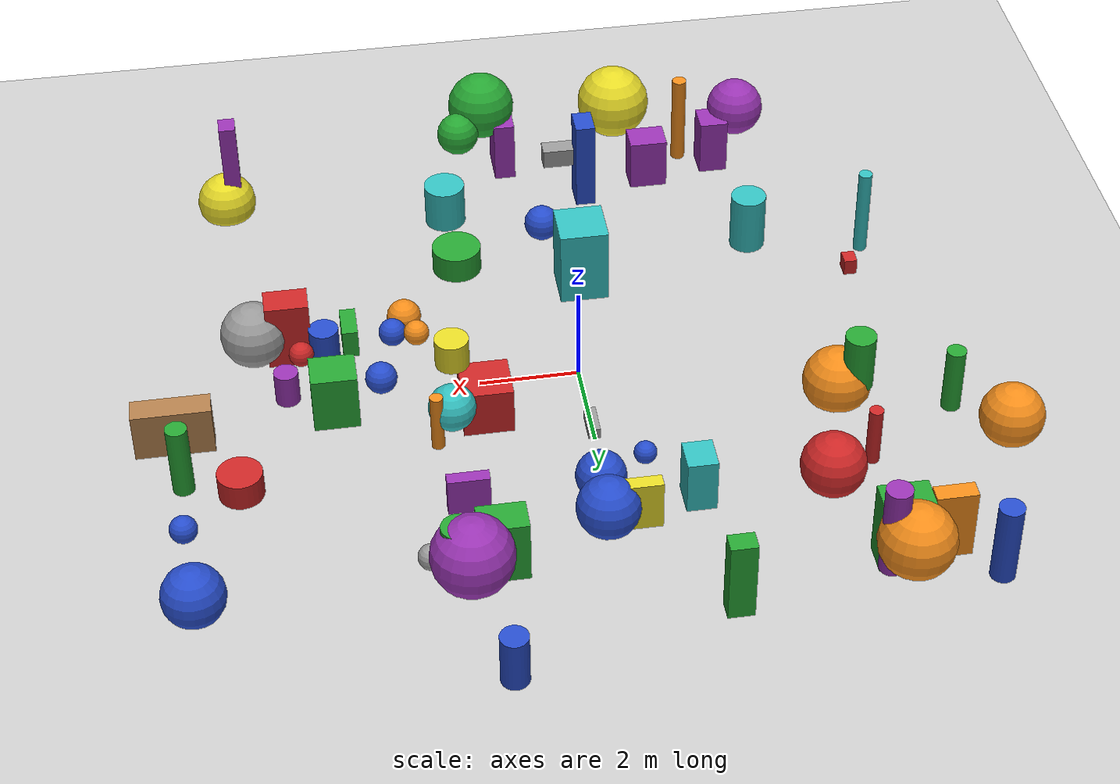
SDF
<sdf version="1.6">
 <world name="ramps_world">
  <include><uri>model://sun</uri></include>
  <include><uri>model://ground_plane</uri></include>
  <model name="box_obstacle_1">
   <pose>2 1 0.5 0 0 0</pose>
   <static>true</static>
   <link name="link">
    <collision name="collision"><geometry><box><size>1 1 1</size></box></geometry></collision>
    <visual name="visual">
     <geometry><box><size>1 1 1</size></box></geometry>
     <material>
      <script><uri>file://media/materials/scripts/gazebo.material</uri><name>Gazebo/Red</name></script>
     </material>
    </visual>
   </link>
  </model>
  <model name="cylinder_obstacle_1">
   <pose>5 -1 0.5 0 0 0</pose>
   <static>true</static>
   <link name="link">
    <collision name="collision">
     <geometry><cylinder><radius>0.3</radius><length>1</length></cylinder></geometry>
    </collision>
    <visual name="visual">
     <geometry><cylinder><radius>0.3</radius><length>1</length></cylinder></geometry>
     <material>
      <script><uri>file://media/materials/scripts/gazebo.material</uri><name>Gazebo/Blue</name></script>
     </material>
    </visual>
   </link>
  </model>
  <model name="box_obstacle_2">
   <pose>8 2 1.5 0 0 0</pose>
   <static>true</static>
   <link name="link">
    <collision name="collision"><geometry><box><size>1.5 0.5 1</size></box></geometry></collision>
    <visual name="visual">
     <geometry><box><size>1.5 0.5 1</size></box></geometry>
     <material>
      <script><uri>file://media/materials/scripts/gazebo.material</uri><name>Gazebo/Wood</name></script>
     </material>
    </visual>
   </link>
  </model>
  <model name="random_obstacle_0">
   <pose>3.04 1.87 0.79 0 0 0</pose>
   <static>true</static>
   <link name="link">
    <collision name="collision">
     <geometry><cylinder><radius>0.13</radius><length>1.23</length></cylinder></geometry>
    </collision>
    <visual name="visual">
     <geometry><cylinder><radius>0.13</radius><length>1.23</length></cylinder></geometry>
     <material>
      <script><uri>file://media/materials/scripts/gazebo.material</uri><name>Gazebo/Orange</name></script>
     </material>
    </visual>
   </link>
  </model>
  <model name="random_obstacle_1">
   <pose>2.37 7.93 0.57 0 0 0</pose>
   <static>true</static>
   <link name="link">
    <collision name="collision">
     <geometry><cylinder><radius>0.27</radius><length>1.09</length></cylinder></geometry>
    </collision>
    <visual name="visual">
     <geometry><cylinder><radius>0.27</radius><length>1.09</length></cylinder></geometry>
     <material>
      <script><uri>file://media/materials/scripts/gazebo.material</uri><name>Gazebo/Blue</name></script>
     </material>
    </visual>
   </link>
  </model>
  <model name="random_obstacle_2">
   <pose>7.81 5.93 0.97 0 0 0</pose>
   <static>true</static>
   <link name="link">
    <collision name="collision"><geometry><sphere><radius>0.60</radius></sphere></geometry></collision>
    <visual name="visual">
     <geometry><sphere><radius>0.60</radius></sphere></geometry>
     <material>
      <script><uri>file://media/materials/scripts/gazebo.material</uri><name>Gazebo/Blue</name></script>
     </material>
    </visual>
   </link>
  </model>
  <model name="random_obstacle_3">
   <pose>-1.80 7.10 1.08 0 0 0</pose>
   <static>true</static>
   <link name="link">
    <collision name="collision"><geometry><box><size>0.51 0.39 1.71</size></box></geometry></collision>
    <visual name="visual">
     <geometry><box><size>0.51 0.39 1.71</size></box></geometry>
     <material>
      <script><uri>file://media/materials/scripts/gazebo.material</uri><name>Gazebo/Green</name></script>
     </material>
    </visual>
   </link>
  </model>
  <model name="random_obstacle_4">
   <pose>-1.68 3.95 0.59 0 0 0</pose>
   <static>true</static>
   <link name="link">
    <collision name="collision"><geometry><box><size>0.59 0.68 1.14</size></box></geometry></collision>
    <visual name="visual">
     <geometry><box><size>0.59 0.68 1.14</size></box></geometry>
     <material>
      <script><uri>file://media/materials/scripts/gazebo.material</uri><name>Gazebo/Turquoise</name></script>
     </material>
    </visual>
   </link>
  </model>
  <model name="random_obstacle_5">
   <pose>3.21 -0.04 1.46 0 0 0</pose>
   <static>true</static>
   <link name="link">
    <collision name="collision"><geometry><sphere><radius>0.25</radius></sphere></geometry></collision>
    <visual name="visual">
     <geometry><sphere><radius>0.25</radius></sphere></geometry>
     <material>
      <script><uri>file://media/materials/scripts/gazebo.material</uri><name>Gazebo/Orange</name></script>
     </material>
    </visual>
   </link>
  </model>
  <model name="random_obstacle_6">
   <pose>6.38 -1.36 0.74 0 0 0</pose>
   <static>true</static>
   <link name="link">
    <collision name="collision"><geometry><sphere><radius>0.67</radius></sphere></geometry></collision>
    <visual name="visual">
     <geometry><sphere><radius>0.67</radius></sphere></geometry>
     <material>
      <script><uri>file://media/materials/scripts/gazebo.material</uri><name>Gazebo/Grey</name></script>
     </material>
    </visual>
   </link>
  </model>
  <model name="random_obstacle_7">
   <pose>-5.08 6.04 0.56 0 0 0</pose>
   <static>true</static>
   <link name="link">
    <collision name="collision"><geometry><box><size>0.97 0.66 1.96</size></box></geometry></collision>
    <visual name="visual">
     <geometry><box><size>0.97 0.66 1.96</size></box></geometry>
     <material>
      <script><uri>file://media/materials/scripts/gazebo.material</uri><name>Gazebo/Green</name></script>
     </material>
    </visual>
   </link>
  </model>
  <model name="random_obstacle_8">
   <pose>-0.39 -2.16 1.32 0 0 0</pose>
   <static>true</static>
   <link name="link">
    <collision name="collision"><geometry><box><size>0.99 1.00 1.62</size></box></geometry></collision>
    <visual name="visual">
     <geometry><box><size>0.99 1.00 1.62</size></box></geometry>
     <material>
      <script><uri>file://media/materials/scripts/gazebo.material</uri><name>Gazebo/Turquoise</name></script>
     </material>
    </visual>
   </link>
  </model>
  <model name="random_obstacle_9">
   <pose>-6.46 -2.71 1.27 0 0 0</pose>
   <static>true</static>
   <link name="link">
    <collision name="collision">
     <geometry><cylinder><radius>0.14</radius><length>1.92</length></cylinder></geometry>
    </collision>
    <visual name="visual">
     <geometry><cylinder><radius>0.14</radius><length>1.92</length></cylinder></geometry>
     <material>
      <script><uri>file://media/materials/scripts/gazebo.material</uri><name>Gazebo/Turquoise</name></script>
     </material>
    </visual>
   </link>
  </model>
  <model name="random_obstacle_10">
   <pose>6.86 2.70 0.53 0 0 0</pose>
   <static>true</static>
   <link name="link">
    <collision name="collision">
     <geometry><cylinder><radius>0.44</radius><length>0.54</length></cylinder></geometry>
    </collision>
    <visual name="visual">
     <geometry><cylinder><radius>0.44</radius><length>0.54</length></cylinder></geometry>
     <material>
      <script><uri>file://media/materials/scripts/gazebo.material</uri><name>Gazebo/Red</name></script>
     </material>
    </visual>
   </link>
  </model>
  <model name="random_obstacle_11">
   <pose>3.33 -1.78 0.47 0 0 0</pose>
   <static>true</static>
   <link name="link">
    <collision name="collision"><geometry><sphere><radius>0.35</radius></sphere></geometry></collision>
    <visual name="visual">
     <geometry><sphere><radius>0.35</radius></sphere></geometry>
     <material>
      <script><uri>file://media/materials/scripts/gazebo.material</uri><name>Gazebo/Orange</name></script>
     </material>
    </visual>
   </link>
  </model>
  <model name="random_obstacle_12">
   <pose>-4.27 4.00 0.54 0 0 0</pose>
   <static>true</static>
   <link name="link">
    <collision name="collision"><geometry><sphere><radius>0.65</radius></sphere></geometry></collision>
    <visual name="visual">
     <geometry><sphere><radius>0.65</radius></sphere></geometry>
     <material>
      <script><uri>file://media/materials/scripts/gazebo.material</uri><name>Gazebo/Red</name></script>
     </material>
    </visual>
   </link>
  </model>
  <model name="random_obstacle_13">
   <pose>0.14 -4.14 0.69 0 0 0</pose>
   <static>true</static>
   <link name="link">
    <collision name="collision"><geometry><sphere><radius>0.37</radius></sphere></geometry></collision>
    <visual name="visual">
     <geometry><sphere><radius>0.37</radius></sphere></geometry>
     <material>
      <script><uri>file://media/materials/scripts/gazebo.material</uri><name>Gazebo/Blue</name></script>
     </material>
    </visual>
   </link>
  </model>
  <model name="random_obstacle_14">
   <pose>-3.94 -6.29 0.87 0 0 0</pose>
   <static>true</static>
   <link name="link">
    <collision name="collision"><geometry><box><size>0.60 0.64 1.22</size></box></geometry></collision>
    <visual name="visual">
     <geometry><box><size>0.60 0.64 1.22</size></box></geometry>
     <material>
      <script><uri>file://media/materials/scripts/gazebo.material</uri><name>Gazebo/Purple</name></script>
     </material>
    </visual>
   </link>
  </model>
  <model name="random_obstacle_15">
   <pose>0.08 3.26 0.23 0 0 0</pose>
   <static>true</static>
   <link name="link">
    <collision name="collision"><geometry><sphere><radius>0.50</radius></sphere></geometry></collision>
    <visual name="visual">
     <geometry><sphere><radius>0.50</radius></sphere></geometry>
     <material>
      <script><uri>file://media/materials/scripts/gazebo.material</uri><name>Gazebo/Blue</name></script>
     </material>
    </visual>
   </link>
  </model>
  <model name="random_obstacle_16">
   <pose>2.59 0.61 1.45 0 0 0</pose>
   <static>true</static>
   <link name="link">
    <collision name="collision">
     <geometry><cylinder><radius>0.34</radius><length>0.62</length></cylinder></geometry>
    </collision>
    <visual name="visual">
     <geometry><cylinder><radius>0.34</radius><length>0.62</length></cylinder></geometry>
     <material>
      <script><uri>file://media/materials/scripts/gazebo.material</uri><name>Gazebo/Yellow</name></script>
     </material>
    </visual>
   </link>
  </model>
  <model name="random_obstacle_17">
   <pose>-3.22 -6.40 1.45 0 0 0</pose>
   <static>true</static>
   <link name="link">
    <collision name="collision">
     <geometry><cylinder><radius>0.15</radius><length>1.98</length></cylinder></geometry>
    </collision>
    <visual name="visual">
     <geometry><cylinder><radius>0.15</radius><length>1.98</length></cylinder></geometry>
     <material>
      <script><uri>file://media/materials/scripts/gazebo.material</uri><name>Gazebo/Orange</name></script>
     </material>
    </visual>
   </link>
  </model>
  <model name="random_obstacle_18">
   <pose>-5.05 6.94 1.29 0 0 0</pose>
   <static>true</static>
   <link name="link">
    <collision name="collision"><geometry><sphere><radius>0.74</radius></sphere></geometry></collision>
    <visual name="visual">
     <geometry><sphere><radius>0.74</radius></sphere></geometry>
     <material>
      <script><uri>file://media/materials/scripts/gazebo.material</uri><name>Gazebo/Orange</name></script>
     </material>
    </visual>
   </link>
  </model>
  <model name="random_obstacle_19">
   <pose>0.13 2.46 0.86 0 0 0</pose>
   <static>true</static>
   <link name="link">
    <collision name="collision"><geometry><box><size>0.23 0.65 0.22</size></box></geometry></collision>
    <visual name="visual">
     <geometry><box><size>0.23 0.65 0.22</size></box></geometry>
     <material>
      <script><uri>file://media/materials/scripts/gazebo.material</uri><name>Gazebo/Grey</name></script>
     </material>
    </visual>
   </link>
  </model>
  <model name="random_obstacle_20">
   <pose>5.82 0.55 0.95 0 0 0</pose>
   <static>true</static>
   <link name="link">
    <collision name="collision">
     <geometry><cylinder><radius>0.24</radius><length>0.70</length></cylinder></geometry>
    </collision>
    <visual name="visual">
     <geometry><cylinder><radius>0.24</radius><length>0.70</length></cylinder></geometry>
     <material>
      <script><uri>file://media/materials/scripts/gazebo.material</uri><name>Gazebo/Purple</name></script>
     </material>
    </visual>
   </link>
  </model>
  <model name="random_obstacle_21">
   <pose>-6.01 6.01 0.63 0 0 0</pose>
   <static>true</static>
   <link name="link">
    <collision name="collision"><geometry><box><size>0.80 0.35 1.69</size></box></geometry></collision>
    <visual name="visual">
     <geometry><box><size>0.80 0.35 1.69</size></box></geometry>
     <material>
      <script><uri>file://media/materials/scripts/gazebo.material</uri><name>Gazebo/Orange</name></script>
     </material>
    </visual>
   </link>
  </model>
  <model name="random_obstacle_22">
   <pose>7.92 2.59 1.20 0 0 0</pose>
   <static>true</static>
   <link name="link">
    <collision name="collision">
     <geometry><cylinder><radius>0.21</radius><length>1.52</length></cylinder></geometry>
    </collision>
    <visual name="visual">
     <geometry><cylinder><radius>0.21</radius><length>1.52</length></cylinder></geometry>
     <material>
      <script><uri>file://media/materials/scripts/gazebo.material</uri><name>Gazebo/Green</name></script>
     </material>
    </visual>
   </link>
  </model>
  <model name="random_obstacle_23">
   <pose>-6.07 -2.10 0.41 0 0 0</pose>
   <static>true</static>
   <link name="link">
    <collision name="collision"><geometry><box><size>0.27 0.33 0.34</size></box></geometry></collision>
    <visual name="visual">
     <geometry><box><size>0.27 0.33 0.34</size></box></geometry>
     <material>
      <script><uri>file://media/materials/scripts/gazebo.material</uri><name>Gazebo/Red</name></script>
     </material>
    </visual>
   </link>
  </model>
  <model name="random_obstacle_24">
   <pose>6.72 -6.59 0.24 0 0 0</pose>
   <static>true</static>
   <link name="link">
    <collision name="collision"><geometry><sphere><radius>0.62</radius></sphere></geometry></collision>
    <visual name="visual">
     <geometry><sphere><radius>0.62</radius></sphere></geometry>
     <material>
      <script><uri>file://media/materials/scripts/gazebo.material</uri><name>Gazebo/Yellow</name></script>
     </material>
    </visual>
   </link>
  </model>
  <model name="random_obstacle_25">
   <pose>0.58 -7.26 0.56 0 0 0</pose>
   <static>true</static>
   <link name="link">
    <collision name="collision"><geometry><box><size>0.45 0.88 1.53</size></box></geometry></collision>
    <visual name="visual">
     <geometry><box><size>0.45 0.88 1.53</size></box></geometry>
     <material>
      <script><uri>file://media/materials/scripts/gazebo.material</uri><name>Gazebo/Purple</name></script>
     </material>
    </visual>
   </link>
  </model>
  <model name="random_obstacle_26">
   <pose>2.15 -4.51 1.20 0 0 0</pose>
   <static>true</static>
   <link name="link">
    <collision name="collision">
     <geometry><cylinder><radius>0.42</radius><length>0.91</length></cylinder></geometry>
    </collision>
    <visual name="visual">
     <geometry><cylinder><radius>0.42</radius><length>0.91</length></cylinder></geometry>
     <material>
      <script><uri>file://media/materials/scripts/gazebo.material</uri><name>Gazebo/Turquoise</name></script>
     </material>
    </visual>
   </link>
  </model>
  <model name="random_obstacle_27">
   <pose>2.10 -2.86 1.01 0 0 0</pose>
   <static>true</static>
   <link name="link">
    <collision name="collision">
     <geometry><cylinder><radius>0.50</radius><length>0.55</length></cylinder></geometry>
    </collision>
    <visual name="visual">
     <geometry><cylinder><radius>0.50</radius><length>0.55</length></cylinder></geometry>
     <material>
      <script><uri>file://media/materials/scripts/gazebo.material</uri><name>Gazebo/Green</name></script>
     </material>
    </visual>
   </link>
  </model>
  <model name="random_obstacle_28">
   <pose>-2.50 -6.32 0.55 0 0 0</pose>
   <static>true</static>
   <link name="link">
    <collision name="collision"><geometry><box><size>0.80 0.64 1.12</size></box></geometry></collision>
    <visual name="visual">
     <geometry><box><size>0.80 0.64 1.12</size></box></geometry>
     <material>
      <script><uri>file://media/materials/scripts/gazebo.material</uri><name>Gazebo/Purple</name></script>
     </material>
    </visual>
   </link>
  </model>
  <model name="random_obstacle_29">
   <pose>-7.85 3.60 0.93 0 0 0</pose>
   <static>true</static>
   <link name="link">
    <collision name="collision"><geometry><sphere><radius>0.64</radius></sphere></geometry></collision>
    <visual name="visual">
     <geometry><sphere><radius>0.64</radius></sphere></geometry>
     <material>
      <script><uri>file://media/materials/scripts/gazebo.material</uri><name>Gazebo/Orange</name></script>
     </material>
    </visual>
   </link>
  </model>
  <model name="random_obstacle_0">
   <pose>1.59 -6.92 1.21 0 0 0</pose>
   <static>true</static>
   <link name="link">
    <collision name="collision"><geometry><sphere><radius>0.45</radius></sphere></geometry></collision>
    <visual name="visual">
     <geometry><sphere><radius>0.45</radius></sphere></geometry>
     <material>
      <script><uri>file://media/materials/scripts/gazebo.material</uri><name>Gazebo/Green</name></script>
     </material>
    </visual>
   </link>
  </model>
  <model name="random_obstacle_1">
   <pose>1.00 -7.53 1.49 0 0 0</pose>
   <static>true</static>
   <link name="link">
    <collision name="collision"><geometry><sphere><radius>0.72</radius></sphere></geometry></collision>
    <visual name="visual">
     <geometry><sphere><radius>0.72</radius></sphere></geometry>
     <material>
      <script><uri>file://media/materials/scripts/gazebo.material</uri><name>Gazebo/Green</name></script>
     </material>
    </visual>
   </link>
  </model>
  <model name="random_obstacle_2">
   <pose>5.69 -1.38 0.80 0 0 0</pose>
   <static>true</static>
   <link name="link">
    <collision name="collision"><geometry><box><size>0.88 0.61 1.46</size></box></geometry></collision>
    <visual name="visual">
     <geometry><box><size>0.88 0.61 1.46</size></box></geometry>
     <material>
      <script><uri>file://media/materials/scripts/gazebo.material</uri><name>Gazebo/Red</name></script>
     </material>
    </visual>
   </link>
  </model>
  <model name="random_obstacle_3">
   <pose>-4.22 -3.64 0.63 0 0 0</pose>
   <static>true</static>
   <link name="link">
    <collision name="collision">
     <geometry><cylinder><radius>0.37</radius><length>1.24</length></cylinder></geometry>
    </collision>
    <visual name="visual">
     <geometry><cylinder><radius>0.37</radius><length>1.24</length></cylinder></geometry>
     <material>
      <script><uri>file://media/materials/scripts/gazebo.material</uri><name>Gazebo/Turquoise</name></script>
     </material>
    </visual>
   </link>
  </model>
  <model name="random_obstacle_4">
   <pose>-2.01 -7.86 1.04 0 0 0</pose>
   <static>true</static>
   <link name="link">
    <collision name="collision"><geometry><sphere><radius>0.79</radius></sphere></geometry></collision>
    <visual name="visual">
     <geometry><sphere><radius>0.79</radius></sphere></geometry>
     <material>
      <script><uri>file://media/materials/scripts/gazebo.material</uri><name>Gazebo/Yellow</name></script>
     </material>
    </visual>
   </link>
  </model>
  <model name="random_obstacle_5">
   <pose>-6.85 2.87 1.37 0 0 0</pose>
   <static>true</static>
   <link name="link">
    <collision name="collision">
     <geometry><cylinder><radius>0.19</radius><length>1.39</length></cylinder></geometry>
    </collision>
    <visual name="visual">
     <geometry><cylinder><radius>0.19</radius><length>1.39</length></cylinder></geometry>
     <material>
      <script><uri>file://media/materials/scripts/gazebo.material</uri><name>Gazebo/Green</name></script>
     </material>
    </visual>
   </link>
  </model>
  <model name="random_obstacle_6">
   <pose>-0.54 4.41 0.27 0 0 0</pose>
   <static>true</static>
   <link name="link">
    <collision name="collision"><geometry><box><size>0.71 0.28 1.53</size></box></geometry></collision>
    <visual name="visual">
     <geometry><box><size>0.71 0.28 1.53</size></box></geometry>
     <material>
      <script><uri>file://media/materials/scripts/gazebo.material</uri><name>Gazebo/Yellow</name></script>
     </material>
    </visual>
   </link>
  </model>
  <model name="random_obstacle_7">
   <pose>3.06 5.79 1.11 0 0 0</pose>
   <static>true</static>
   <link name="link">
    <collision name="collision">
     <geometry><cylinder><radius>0.33</radius><length>1.36</length></cylinder></geometry>
    </collision>
    <visual name="visual">
     <geometry><cylinder><radius>0.33</radius><length>1.36</length></cylinder></geometry>
     <material>
      <script><uri>file://media/materials/scripts/gazebo.material</uri><name>Gazebo/Green</name></script>
     </material>
    </visual>
   </link>
  </model>
  <model name="random_obstacle_8">
   <pose>-0.48 -5.46 1.48 0 0 0</pose>
   <static>true</static>
   <link name="link">
    <collision name="collision"><geometry><box><size>0.81 0.37 0.40</size></box></geometry></collision>
    <visual name="visual">
     <geometry><box><size>0.81 0.37 0.40</size></box></geometry>
     <material>
      <script><uri>file://media/materials/scripts/gazebo.material</uri><name>Gazebo/Grey</name></script>
     </material>
    </visual>
   </link>
  </model>
  <model name="random_obstacle_9">
   <pose>3.97 0.18 0.58 0 0 0</pose>
   <static>true</static>
   <link name="link">
    <collision name="collision"><geometry><sphere><radius>0.32</radius></sphere></geometry></collision>
    <visual name="visual">
     <geometry><sphere><radius>0.32</radius></sphere></geometry>
     <material>
      <script><uri>file://media/materials/scripts/gazebo.material</uri><name>Gazebo/Blue</name></script>
     </material>
    </visual>
   </link>
  </model>
  <model name="random_obstacle_10">
   <pose>3.54 5.30 0.62 0 0 0</pose>
   <static>true</static>
   <link name="link">
    <collision name="collision"><geometry><sphere><radius>0.25</radius></sphere></geometry></collision>
    <visual name="visual">
     <geometry><sphere><radius>0.25</radius></sphere></geometry>
     <material>
      <script><uri>file://media/materials/scripts/gazebo.material</uri><name>Gazebo/Grey</name></script>
     </material>
    </visual>
   </link>
  </model>
  <model name="random_obstacle_11">
   <pose>-0.93 -5.24 1.45 0 0 0</pose>
   <static>true</static>
   <link name="link">
    <collision name="collision"><geometry><box><size>0.41 0.61 1.97</size></box></geometry></collision>
    <visual name="visual">
     <geometry><box><size>0.41 0.61 1.97</size></box></geometry>
     <material>
      <script><uri>file://media/materials/scripts/gazebo.material</uri><name>Gazebo/Blue</name></script>
     </material>
    </visual>
   </link>
  </model>
  <model name="random_obstacle_12">
   <pose>-0.65 3.89 1.29 0 0 0</pose>
   <static>true</static>
   <link name="link">
    <collision name="collision"><geometry><sphere><radius>0.22</radius></sphere></geometry></collision>
    <visual name="visual">
     <geometry><sphere><radius>0.22</radius></sphere></geometry>
     <material>
      <script><uri>file://media/materials/scripts/gazebo.material</uri><name>Gazebo/Blue</name></script>
     </material>
    </visual>
   </link>
  </model>
  <model name="random_obstacle_13">
   <pose>-5.34 1.58 0.95 0 0 0</pose>
   <static>true</static>
   <link name="link">
    <collision name="collision">
     <geometry><cylinder><radius>0.31</radius><length>1.22</length></cylinder></geometry>
    </collision>
    <visual name="visual">
     <geometry><cylinder><radius>0.31</radius><length>1.22</length></cylinder></geometry>
     <material>
      <script><uri>file://media/materials/scripts/gazebo.material</uri><name>Gazebo/Green</name></script>
     </material>
    </visual>
   </link>
  </model>
  <model name="random_obstacle_14">
   <pose>2.65 3.55 0.45 0 0 0</pose>
   <static>true</static>
   <link name="link">
    <collision name="collision"><geometry><box><size>0.82 0.26 0.80</size></box></geometry></collision>
    <visual name="visual">
     <geometry><box><size>0.82 0.26 0.80</size></box></geometry>
     <material>
      <script><uri>file://media/materials/scripts/gazebo.material</uri><name>Gazebo/Purple</name></script>
     </material>
    </visual>
   </link>
  </model>
  <model name="random_obstacle_15">
   <pose>2.72 1.62 0.89 0 0 0</pose>
   <static>true</static>
   <link name="link">
    <collision name="collision"><geometry><sphere><radius>0.47</radius></sphere></geometry></collision>
    <visual name="visual">
     <geometry><sphere><radius>0.47</radius></sphere></geometry>
     <material>
      <script><uri>file://media/materials/scripts/gazebo.material</uri><name>Gazebo/Turquoise</name></script>
     </material>
    </visual>
   </link>
  </model>
  <model name="random_obstacle_16">
   <pose>-4.68 6.76 1.46 0 0 0</pose>
   <static>true</static>
   <link name="link">
    <collision name="collision">
     <geometry><cylinder><radius>0.25</radius><length>1.93</length></cylinder></geometry>
    </collision>
    <visual name="visual">
     <geometry><cylinder><radius>0.25</radius><length>1.93</length></cylinder></geometry>
     <material>
      <script><uri>file://media/materials/scripts/gazebo.material</uri><name>Gazebo/Purple</name></script>
     </material>
    </visual>
   </link>
  </model>
  <model name="random_obstacle_17">
   <pose>-6.62 7.24 1.31 0 0 0</pose>
   <static>true</static>
   <link name="link">
    <collision name="collision">
     <geometry><cylinder><radius>0.24</radius><length>1.67</length></cylinder></geometry>
    </collision>
    <visual name="visual">
     <geometry><cylinder><radius>0.24</radius><length>1.67</length></cylinder></geometry>
     <material>
      <script><uri>file://media/materials/scripts/gazebo.material</uri><name>Gazebo/Blue</name></script>
     </material>
    </visual>
   </link>
  </model>
  <model name="random_obstacle_18">
   <pose>2.21 5.17 0.63 0 0 0</pose>
   <static>true</static>
   <link name="link">
    <collision name="collision"><geometry><box><size>0.94 0.66 1.36</size></box></geometry></collision>
    <visual name="visual">
     <geometry><box><size>0.94 0.66 1.36</size></box></geometry>
     <material>
      <script><uri>file://media/materials/scripts/gazebo.material</uri><name>Gazebo/Green</name></script>
     </material>
    </visual>
   </link>
  </model>
  <model name="random_obstacle_19">
   <pose>-5.21 3.39 0.29 0 0 0</pose>
   <static>true</static>
   <link name="link">
    <collision name="collision">
     <geometry><cylinder><radius>0.14</radius><length>1.90</length></cylinder></geometry>
    </collision>
    <visual name="visual">
     <geometry><cylinder><radius>0.14</radius><length>1.90</length></cylinder></geometry>
     <material>
      <script><uri>file://media/materials/scripts/gazebo.material</uri><name>Gazebo/Red</name></script>
     </material>
    </visual>
   </link>
  </model>
  <model name="random_obstacle_20">
   <pose>-4.52 -6.62 1.47 0 0 0</pose>
   <static>true</static>
   <link name="link">
    <collision name="collision"><geometry><sphere><radius>0.61</radius></sphere></geometry></collision>
    <visual name="visual">
     <geometry><sphere><radius>0.61</radius></sphere></geometry>
     <material>
      <script><uri>file://media/materials/scripts/gazebo.material</uri><name>Gazebo/Purple</name></script>
     </material>
    </visual>
   </link>
  </model>
  <model name="random_obstacle_21">
   <pose>0.14 4.49 0.57 0 0 0</pose>
   <static>true</static>
   <link name="link">
    <collision name="collision"><geometry><sphere><radius>0.62</radius></sphere></geometry></collision>
    <visual name="visual">
     <geometry><sphere><radius>0.62</radius></sphere></geometry>
     <material>
      <script><uri>file://media/materials/scripts/gazebo.material</uri><name>Gazebo/Blue</name></script>
     </material>
    </visual>
   </link>
  </model>
  <model name="random_obstacle_22">
   <pose>5.48 -0.41 0.90 0 0 0</pose>
   <static>true</static>
   <link name="link">
    <collision name="collision"><geometry><sphere><radius>0.25</radius></sphere></geometry></collision>
    <visual name="visual">
     <geometry><sphere><radius>0.25</radius></sphere></geometry>
     <material>
      <script><uri>file://media/materials/scripts/gazebo.material</uri><name>Gazebo/Red</name></script>
     </material>
    </visual>
   </link>
  </model>
  <model name="random_obstacle_23">
   <pose>-4.98 1.39 0.31 0 0 0</pose>
   <static>true</static>
   <link name="link">
    <collision name="collision"><geometry><sphere><radius>0.70</radius></sphere></geometry></collision>
    <visual name="visual">
     <geometry><sphere><radius>0.70</radius></sphere></geometry>
     <material>
      <script><uri>file://media/materials/scripts/gazebo.material</uri><name>Gazebo/Orange</name></script>
     </material>
    </visual>
   </link>
  </model>
  <model name="random_obstacle_24">
   <pose>6.55 -6.59 1.48 0 0 0</pose>
   <static>true</static>
   <link name="link">
    <collision name="collision"><geometry><box><size>0.35 0.44 1.52</size></box></geometry></collision>
    <visual name="visual">
     <geometry><box><size>0.35 0.44 1.52</size></box></geometry>
     <material>
      <script><uri>file://media/materials/scripts/gazebo.material</uri><name>Gazebo/Purple</name></script>
     </material>
    </visual>
   </link>
  </model>
  <model name="random_obstacle_25">
   <pose>4.92 0.47 0.47 0 0 0</pose>
   <static>true</static>
   <link name="link">
    <collision name="collision"><geometry><box><size>0.91 0.78 1.44</size></box></geometry></collision>
    <visual name="visual">
     <geometry><box><size>0.91 0.78 1.44</size></box></geometry>
     <material>
      <script><uri>file://media/materials/scripts/gazebo.material</uri><name>Gazebo/Green</name></script>
     </material>
    </visual>
   </link>
  </model>
  <model name="random_obstacle_26">
   <pose>3.62 -1.13 0.62 0 0 0</pose>
   <static>true</static>
   <link name="link">
    <collision name="collision"><geometry><sphere><radius>0.28</radius></sphere></geometry></collision>
    <visual name="visual">
     <geometry><sphere><radius>0.28</radius></sphere></geometry>
     <material>
      <script><uri>file://media/materials/scripts/gazebo.material</uri><name>Gazebo/Blue</name></script>
     </material>
    </visual>
   </link>
  </model>
  <model name="random_obstacle_27">
   <pose>2.84 5.89 1.13 0 0 0</pose>
   <static>true</static>
   <link name="link">
    <collision name="collision"><geometry><sphere><radius>0.79</radius></sphere></geometry></collision>
    <visual name="visual">
     <geometry><sphere><radius>0.79</radius></sphere></geometry>
     <material>
      <script><uri>file://media/materials/scripts/gazebo.material</uri><name>Gazebo/Purple</name></script>
     </material>
    </visual>
   </link>
  </model>
  <model name="random_obstacle_28">
   <pose>4.51 -0.28 1.43 0 0 0</pose>
   <static>true</static>
   <link name="link">
    <collision name="collision"><geometry><box><size>0.31 0.74 0.59</size></box></geometry></collision>
    <visual name="visual">
     <geometry><box><size>0.31 0.74 0.59</size></box></geometry>
     <material>
      <script><uri>file://media/materials/scripts/gazebo.material</uri><name>Gazebo/Green</name></script>
     </material>
    </visual>
   </link>
  </model>
  <model name="random_obstacle_29">
   <pose>7.97 3.69 0.45 0 0 0</pose>
   <static>true</static>
   <link name="link">
    <collision name="collision"><geometry><sphere><radius>0.27</radius></sphere></geometry></collision>
    <visual name="visual">
     <geometry><sphere><radius>0.27</radius></sphere></geometry>
     <material>
      <script><uri>file://media/materials/scripts/gazebo.material</uri><name>Gazebo/Blue</name></script>
     </material>
    </visual>
   </link>
  </model>
 </world>
</sdf>
